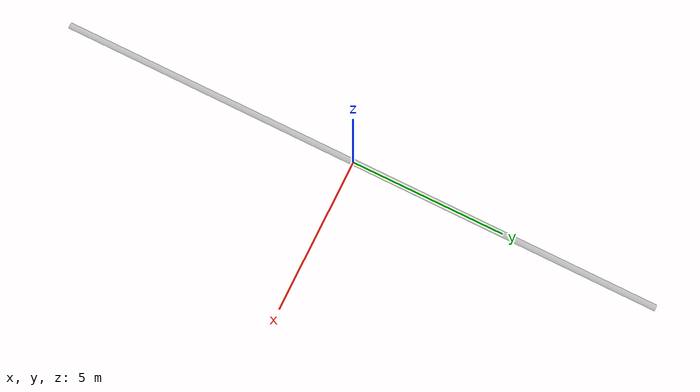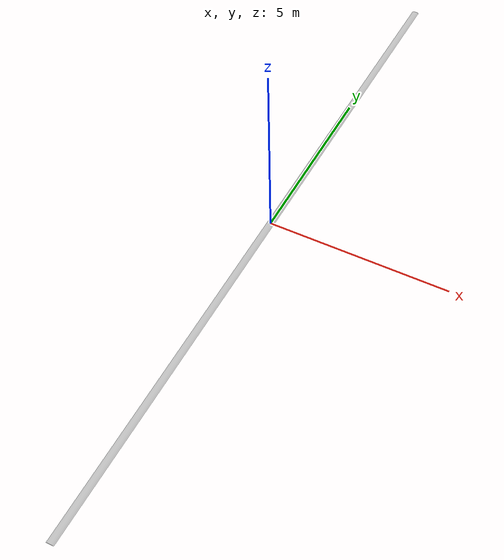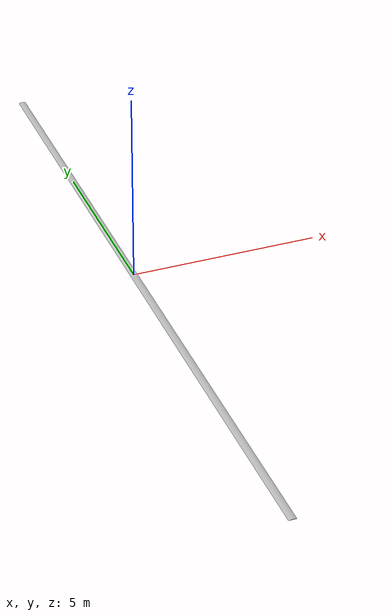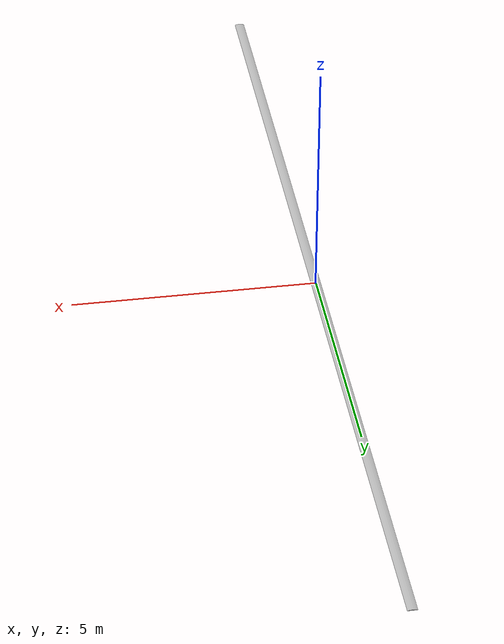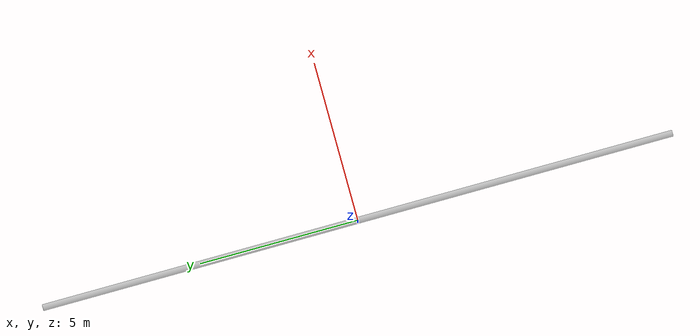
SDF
<sdf version='1.6'>
  <model name='stripe'>
    <static>true</static>
    <link name='base_link'>
      <pose frame=''>0 0 0 0 -0 0</pose>
      <inertial>
        <pose frame=''>0.001553 -0 0.007578 0 -0 0</pose>
        <mass>58.616</mass>
        <inertia>
          <ixx>1953.9</ixx>
          <ixy>1.2894e-15</ixy>
          <ixz>1.2629e-16</ixz>
          <iyy>0.12042</iyy>
          <iyz>-5.4971e-15</iyz>
          <izz>1954</izz>
        </inertia>
      </inertial>
      <collision name='base_link_collision'>
        <pose frame=''>0 0 0 0 0 0</pose>
        <geometry>
          <mesh>
            <scale>1 1 1</scale>
            <uri>model://stripe/meshes/base_link.STL</uri>
          </mesh>
        </geometry>
      </collision>
      <visual name='base_link_visual'>
        <pose frame=''>0 0 0 0 0 0</pose>
        <geometry>
          <mesh>
            <scale>1 1 1</scale>
            <uri>model://stripe/meshes/base_link.STL</uri>
          </mesh>
        </geometry>
      </visual>
    </link>
  </model>
</sdf>
